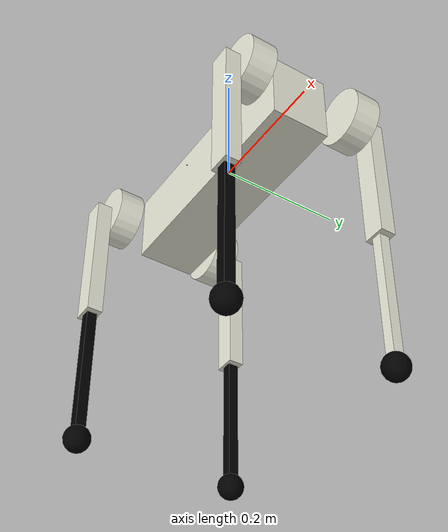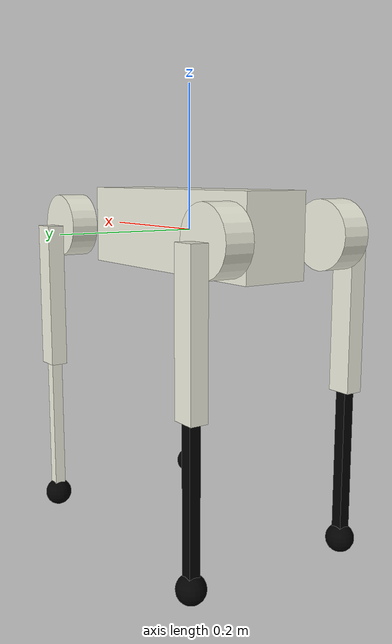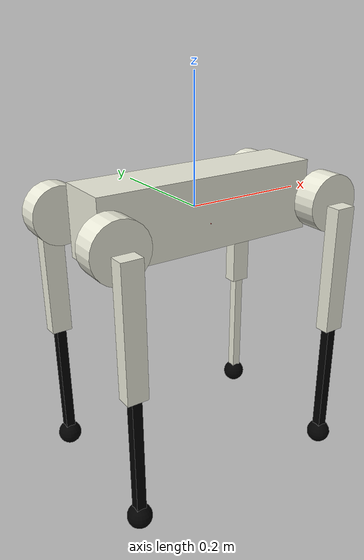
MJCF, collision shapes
<mujoco model="go1_description">
    <compiler angle="radian" meshdir="/home/bridge/Desktop/quadrupedal_robot_recover/legged_gym/resources/robots/go1/meshes/" autolimits="true"/>
    <size njmax="500" nconmax="100" />

    <asset>
        <mesh name="trunk" file="trunk.stl" />
        <mesh name="hip" file="hip.stl" />
        <mesh name="thigh_mirror" file="thigh_mirror.stl" />
        <mesh name="calf" file="calf.stl" />
        <mesh name="thigh" file="thigh.stl" />
    </asset>
    <worldbody>
        <geom size="0.0005 0.0005 0.0005" type="box" contype="0" conaffinity="0" group="1" />
        <geom type="mesh" contype="0" conaffinity="0" group="1" rgba="0.913725 0.913725 0.847059 1" mesh="trunk" />
        <geom size="0.1881 0.04675 0.057" type="box" rgba="0.913725 0.913725 0.847059 1" />
        <geom size="0.0005 0.0005 0.0005" pos="-0.01592 -0.06659 -0.00617" type="box" contype="0" conaffinity="0" group="1" rgba="0.8 0 0 1" />

        <body name="FR_hip" pos="0.1881 -0.04675 0">
            <inertial pos="-0.00541 0.00074 6e-06" quat="0.506126 0.507401 0.493705 0.492582" mass="0.510299" diaginertia="0.000591107 0.000396595 0.000305077" />
            <joint name="FR_hip_joint" pos="0 0 0" axis="1 0 0" limited="true" range="-0.802851 0.802851" />
            <geom quat="0 1 0 0" type="mesh" contype="0" conaffinity="0" group="1" rgba="0.913725 0.913725 0.847059 1" mesh="hip" />
            <geom size="0.046 0.02" pos="0 -0.045 0" quat="0.707107 0.707107 0 0" type="cylinder" rgba="0.913725 0.913725 0.847059 1" />
            <body name="FR_thigh" pos="0 -0.08 0">
                <inertial pos="-0.003468 0.018947 -0.032736" quat="0.999266 0.00067676 -0.0382978 0.000639813" mass="0.898919" diaginertia="0.00542178 0.00514246 0.000998869" />
                <joint name="FR_thigh_joint" pos="0 0 0" axis="0 1 0" limited="true" range="-1.0472 4.18879" />
                <geom type="mesh" contype="0" conaffinity="0" group="1" rgba="0.913725 0.913725 0.847059 1" mesh="thigh_mirror" />
                <geom size="0.1065 0.01225 0.017" pos="0 0 -0.1065" quat="0.707107 0 0.707107 0" type="box" rgba="0.913725 0.913725 0.847059 1" />
                <body name="FR_calf" pos="0 0 -0.213">
                    <inertial pos="0.00455603 0.0009473 -0.147239" quat="0.762045 0.00970173 0.0180098 0.647201" mass="0.218015" diaginertia="0.00399678 0.00398122 3.99428e-05" />
                    <joint name="FR_calf_joint" pos="0 0 0" axis="0 1 0" limited="true" range="-2.69653 -0.916298" />
                    <geom type="mesh" contype="0" conaffinity="0" group="1" rgba="0 0 0 1" mesh="calf" />
                    <geom size="0.1065 0.008 0.008" pos="0 0 -0.1065" quat="0.707107 0 0.707107 0" type="box" rgba="0 0 0 1" />
                    <geom size="0.01" pos="0 0 -0.213" contype="0" conaffinity="0" group="1" rgba="0 0 0 1" />
                    <geom size="0.02" pos="0 0 -0.213" rgba="0 0 0 1" />
                </body>
            </body>
        </body>
        <body name="FL_hip" pos="0.1881 0.04675 0">
            <inertial pos="-0.00541 -0.00074 6e-06" quat="0.492582 0.493705 0.507401 0.506126" mass="0.510299" diaginertia="0.000591107 0.000396595 0.000305077" />
            <joint name="FL_hip_joint" pos="0 0 0" axis="1 0 0" limited="true" range="-0.802851 0.802851" />
            <geom type="mesh" contype="0" conaffinity="0" group="1" rgba="0.913725 0.913725 0.847059 1" mesh="hip" />
            <geom size="0.046 0.02" pos="0 0.045 0" quat="0.707107 0.707107 0 0" type="cylinder" rgba="0.913725 0.913725 0.847059 1" />
            <body name="FL_thigh" pos="0 0.08 0">
                <inertial pos="-0.003468 -0.018947 -0.032736" quat="0.999266 -0.00067676 -0.0382978 -0.000639813" mass="0.898919" diaginertia="0.00542178 0.00514246 0.000998869" />
                <joint name="FL_thigh_joint" pos="0 0 0" axis="0 1 0" limited="true" range="-1.0472 4.18879" />
                <geom type="mesh" contype="0" conaffinity="0" group="1" rgba="0.913725 0.913725 0.847059 1" mesh="thigh" />
                <geom size="0.1065 0.01225 0.017" pos="0 0 -0.1065" quat="0.707107 0 0.707107 0" type="box" rgba="0.913725 0.913725 0.847059 1" />
                <body name="FL_calf" pos="0 0 -0.213">
                    <inertial pos="0.00455603 0.0009473 -0.147239" quat="0.762045 0.00970173 0.0180098 0.647201" mass="0.218015" diaginertia="0.00399678 0.00398122 3.99428e-05" />
                    <joint name="FL_calf_joint" pos="0 0 0" axis="0 1 0" limited="true" range="-2.69653 -0.916298" />
                    <geom type="mesh" contype="0" conaffinity="0" group="1" rgba="0.913725 0.913725 0.847059 1" mesh="calf" />
                    <geom size="0.1065 0.008 0.008" pos="0 0 -0.1065" quat="0.707107 0 0.707107 0" type="box" rgba="0.913725 0.913725 0.847059 1" />
                    <geom size="0.01" pos="0 0 -0.213" contype="0" conaffinity="0" group="1" rgba="0 0 0 1" />
                    <geom size="0.02" pos="0 0 -0.213" rgba="0 0 0 1" />
                </body>
            </body>
        </body>
        <body name="RR_hip" pos="-0.1881 -0.04675 0">
            <inertial pos="0.00541 0.00074 6e-06" quat="0.493705 0.492582 0.506126 0.507401" mass="0.510299" diaginertia="0.000591107 0.000396595 0.000305077" />
            <joint name="RR_hip_joint" pos="0 0 0" axis="1 0 0" limited="true" range="-0.802851 0.802851" />
            <geom quat="0 0 0 -1" type="mesh" contype="0" conaffinity="0" group="1" rgba="0.913725 0.913725 0.847059 1" mesh="hip" />
            <geom size="0.046 0.02" pos="0 -0.045 0" quat="0.707107 0.707107 0 0" type="cylinder" rgba="0.913725 0.913725 0.847059 1" />
            <body name="RR_thigh" pos="0 -0.08 0">
                <inertial pos="-0.003468 0.018947 -0.032736" quat="0.999266 0.00067676 -0.0382978 0.000639813" mass="0.898919" diaginertia="0.00542178 0.00514246 0.000998869" />
                <joint name="RR_thigh_joint" pos="0 0 0" axis="0 1 0" limited="true" range="-1.0472 4.18879" />
                <geom type="mesh" contype="0" conaffinity="0" group="1" rgba="0.913725 0.913725 0.847059 1" mesh="thigh_mirror" />
                <geom size="0.1065 0.01225 0.017" pos="0 0 -0.1065" quat="0.707107 0 0.707107 0" type="box" rgba="0.913725 0.913725 0.847059 1" />
                <body name="RR_calf" pos="0 0 -0.213">
                    <inertial pos="0.00455603 0.0009473 -0.147239" quat="0.762045 0.00970173 0.0180098 0.647201" mass="0.218015" diaginertia="0.00399678 0.00398122 3.99428e-05" />
                    <joint name="RR_calf_joint" pos="0 0 0" axis="0 1 0" limited="true" range="-2.69653 -0.916298" />
                    <geom type="mesh" contype="0" conaffinity="0" group="1" rgba="0 0 0 1" mesh="calf" />
                    <geom size="0.1065 0.008 0.008" pos="0 0 -0.1065" quat="0.707107 0 0.707107 0" type="box" rgba="0 0 0 1" />
                    <geom size="0.01" pos="0 0 -0.213" contype="0" conaffinity="0" group="1" rgba="0 0 0 1" />
                    <geom size="0.02" pos="0 0 -0.213" rgba="0 0 0 1" />
                </body>
            </body>
        </body>
        <body name="RL_hip" pos="-0.1881 0.04675 0">
            <inertial pos="0.00541 -0.00074 6e-06" quat="0.507401 0.506126 0.492582 0.493705" mass="0.510299" diaginertia="0.000591107 0.000396595 0.000305077" />
            <joint name="RL_hip_joint" pos="0 0 0" axis="1 0 0" limited="true" range="-0.802851 0.802851" />
            <geom quat="0 0 1 0" type="mesh" contype="0" conaffinity="0" group="1" rgba="0.913725 0.913725 0.847059 1" mesh="hip" />
            <geom size="0.046 0.02" pos="0 0.045 0" quat="0.707107 0.707107 0 0" type="cylinder" rgba="0.913725 0.913725 0.847059 1" />
            <body name="RL_thigh" pos="0 0.08 0">
                <inertial pos="-0.003468 -0.018947 -0.032736" quat="0.999266 -0.00067676 -0.0382978 -0.000639813" mass="0.898919" diaginertia="0.00542178 0.00514246 0.000998869" />
                <joint name="RL_thigh_joint" pos="0 0 0" axis="0 1 0" limited="true" range="-1.0472 4.18879" />
                <geom type="mesh" contype="0" conaffinity="0" group="1" rgba="0.913725 0.913725 0.847059 1" mesh="thigh" />
                <geom size="0.1065 0.01225 0.017" pos="0 0 -0.1065" quat="0.707107 0 0.707107 0" type="box" rgba="0.913725 0.913725 0.847059 1" />
                <body name="RL_calf" pos="0 0 -0.213">
                    <inertial pos="0.00455603 0.0009473 -0.147239" quat="0.762045 0.00970173 0.0180098 0.647201" mass="0.218015" diaginertia="0.00399678 0.00398122 3.99428e-05" />
                    <joint name="RL_calf_joint" pos="0 0 0" axis="0 1 0" limited="true" range="-2.69653 -0.916298" />
                    <geom type="mesh" contype="0" conaffinity="0" group="1" rgba="0 0 0 1" mesh="calf" />
                    <geom size="0.1065 0.008 0.008" pos="0 0 -0.1065" quat="0.707107 0 0.707107 0" type="box" rgba="0 0 0 1" />
                    <geom size="0.01" pos="0 0 -0.213" contype="0" conaffinity="0" group="1" rgba="0 0 0 1" />
                    <geom size="0.02" pos="0 0 -0.213" rgba="0 0 0 1" />
                </body>
            </body>
        </body>
    </worldbody>

    <actuator>
        <motor class ="abduction" name = "FR_hip" joint ="FR_hip_joint" />
        <motor class ="hip" name = "FR_thigh" joint ="FR_thigh_joint" />
        <motor class ="knee" name = "FR_calf" joint ="FR_calf_joint" />
        <motor class ="abduction" name = "FL_hip" joint ="FL_hip_joint" />
        <motor class ="hip" name = "FL_thigh" joint ="FL_thigh_joint" />
        <motor class ="knee" name = "FL_calf" joint ="FL_calf_joint" />
        <motor class ="abduction" name = "RR_hip" joint ="RR_hip_joint" />
        <motor class ="hip" name = "RR_thigh" joint ="RR_thigh_joint" />
        <motor class ="knee" name = "RR_calf" joint ="RR_calf_joint" />
        <motor class ="abduction" name = "RL_hip" joint ="RL_hip_joint" />
        <motor class ="hip" name = "RL_thigh" joint ="RL_thigh_joint" />
        <motor class ="knee" name = "RL_calf" joint ="RL_calf_joint" />

    </actuator>

    <sensor>
        <jointpos name="FR_hip_pos" joint="FR_hip_joint" />
        <jointpos name="FR_thigh_pos" joint="FR_thigh_joint" />
        <jointpos name="FR_calf_pos" joint="FR_calf_joint" />
        <jointpos name="FL_hip_pos" joint="FL_hip_joint" />
        <jointpos name="FL_thigh_pos" joint="FL_thigh_joint" />
        <jointpos name="FL_calf_pos" joint="FL_calf_joint" />
        <jointpos name="RR_hip_pos" joint="RR_hip_joint" />
        <jointpos name="RR_thigh_pos" joint="RR_thigh_joint" />
        <jointpos name="RR_calf_pos" joint="RR_calf_joint" />
        <jointpos name="RL_hip_pos" joint="RL_hip_joint" />
        <jointpos name="RL_thigh_pos" joint="RL_thigh_joint" />
        <jointpos name="RL_calf_pos" joint="RL_calf_joint" />

        <jointvel name="FR_hip_vel" joint="FR_hip_joint" />
        <jointvel name="FR_thigh_vel" joint="FR_thigh_joint" />
        <jointvel name="FR_calf_vel" joint="FR_calf_joint" />
        <jointvel name="FL_hip_vel" joint="FL_hip_joint" />
        <jointvel name="FL_thigh_vel" joint="FL_thigh_joint" />
        <jointvel name="FL_calf_vel" joint="FL_calf_joint" />
        <jointvel name="RR_hip_vel" joint="RR_hip_joint" />
        <jointvel name="RR_thigh_vel" joint="RR_thigh_joint" />
        <jointvel name="RR_calf_vel" joint="RR_calf_joint" />
        <jointvel name="RL_hip_vel" joint="RL_hip_joint" />
        <jointvel name="RL_thigh_vel" joint="RL_thigh_joint" />
        <jointvel name="RL_calf_vel" joint="RL_calf_joint" />

        <framequat name="imu_quat" objtype="site" noise="0.001" objname="imu"/>
        <framepos name="frame_pos" objtype="site" noise="0.001" objname="imu"/>
        <gyro name="imu_gyro" site="imu" noise="0.005" cutoff="34.9"/>
        <velocimeter name="linear-velocity" site="imu" noise="0.001" cutoff="30"/>
        <accelerometer name="linear-acceleration" site="imu" noise="0.005" cutoff="157"/>
        <magnetometer name="magnetometer" site="imu"/>
    </sensor>

</mujoco>
